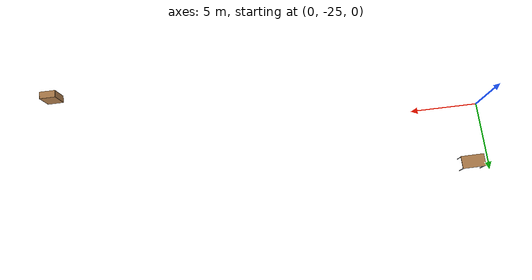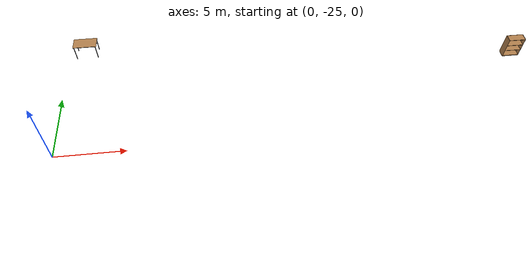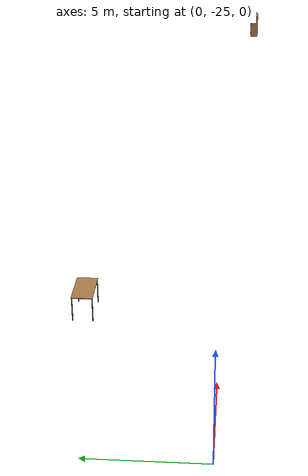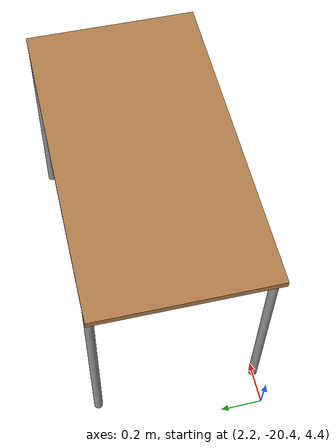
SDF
<sdf version="1.4">
 <world name="default">
  <scene>
   <sky><clouds><speed>1</speed></clouds></sky>
   <ambient>0.4 0.4 0.4 1</ambient>
   <background>0.7 0.7 0.7 1</background>
   <shadows>1</shadows>
  </scene>
  <light name="sun" type="directional">
   <pose>0 0 10 0 -0 0</pose>
   <diffuse>0.8 0.8 0.8 1</diffuse>
   <specular>0.2 0.2 0.2 1</specular>
   <attenuation>
    <range>1000</range>
    <constant>0.9</constant>
    <linear>0.01</linear>
    <quadratic>0.001</quadratic>
   </attenuation>
   <direction>-0.5 0.1 -0.9</direction>
  </light>
  <physics type="ode">
   <max_step_size>0.001</max_step_size>
   <real_time_factor>1</real_time_factor>
   <real_time_update_rate>1000</real_time_update_rate>
   <gravity>0 0 -9.8</gravity>
  </physics>
  <spherical_coordinates>
   <surface_model>EARTH_WGS84</surface_model>
   <latitude_deg>0</latitude_deg>
   <longitude_deg>0</longitude_deg>
   <elevation>0</elevation>
   <heading_deg>0</heading_deg>
  </spherical_coordinates>
  <model name="bookshelf">
   <static>1</static>
   <link name="link">
    <inertial><mass>1</mass></inertial>
    <collision name="back">
     <pose>0 0.005 0.6 0 -0 0</pose>
     <geometry><box><size>0.9 0.01 1.2</size></box></geometry>
    </collision>
    <visual name="visual1">
     <pose>0 0.005 0.6 0 -0 0</pose>
     <geometry><box><size>0.9 0.01 1.2</size></box></geometry>
     <material>
      <script><uri>file://media/materials/scripts/gazebo.material</uri><name>Gazebo/Wood</name></script>
     </material>
    </visual>
    <collision name="left_side">
     <pose>0.45 -0.195 0.6 0 -0 0</pose>
     <geometry><box><size>0.02 0.4 1.2</size></box></geometry>
    </collision>
    <visual name="visual2">
     <pose>0.45 -0.195 0.6 0 -0 0</pose>
     <geometry><box><size>0.02 0.4 1.2</size></box></geometry>
     <material>
      <script><uri>file://media/materials/scripts/gazebo.material</uri><name>Gazebo/Wood</name></script>
     </material>
    </visual>
    <collision name="right_side">
     <pose>-0.45 -0.195 0.6 0 -0 0</pose>
     <geometry><box><size>0.02 0.4 1.2</size></box></geometry>
    </collision>
    <visual name="visual3">
     <pose>-0.45 -0.195 0.6 0 -0 0</pose>
     <geometry><box><size>0.02 0.4 1.2</size></box></geometry>
     <material>
      <script><uri>file://media/materials/scripts/gazebo.material</uri><name>Gazebo/Wood</name></script>
     </material>
    </visual>
    <collision name="bottom">
     <pose>0 -0.195 0.03 0 -0 0</pose>
     <geometry><box><size>0.88 0.4 0.06</size></box></geometry>
    </collision>
    <visual name="visual4">
     <pose>0 -0.195 0.03 0 -0 0</pose>
     <geometry><box><size>0.88 0.4 0.06</size></box></geometry>
     <material>
      <script><uri>file://media/materials/scripts/gazebo.material</uri><name>Gazebo/Wood</name></script>
     </material>
    </visual>
    <collision name="top">
     <pose>0 -0.195 1.19 0 -0 0</pose>
     <geometry><box><size>0.88 0.4 0.02</size></box></geometry>
    </collision>
    <visual name="visual5">
     <pose>0 -0.195 1.19 0 -0 0</pose>
     <geometry><box><size>0.88 0.4 0.02</size></box></geometry>
     <material>
      <script><uri>file://media/materials/scripts/gazebo.material</uri><name>Gazebo/Wood</name></script>
     </material>
    </visual>
    <collision name="low_shelf">
     <pose>0 -0.195 0.43 0 -0 0</pose>
     <geometry><box><size>0.88 0.4 0.02</size></box></geometry>
    </collision>
    <visual name="visual6">
     <pose>0 -0.195 0.43 0 -0 0</pose>
     <geometry><box><size>0.88 0.4 0.02</size></box></geometry>
     <material>
      <script><uri>file://media/materials/scripts/gazebo.material</uri><name>Gazebo/Wood</name></script>
     </material>
    </visual>
    <collision name="high_shelf">
     <pose>0 -0.195 0.8 0 -0 0</pose>
     <geometry><box><size>0.88 0.4 0.02</size></box></geometry>
    </collision>
    <visual name="visual7">
     <pose>0 -0.195 0.8 0 -0 0</pose>
     <geometry><box><size>0.88 0.4 0.02</size></box></geometry>
     <material>
      <script><uri>file://media/materials/scripts/gazebo.material</uri><name>Gazebo/Wood</name></script>
     </material>
    </visual>
    <velocity_decay><linear>0</linear><angular>0</angular></velocity_decay>
   </link>
   <pose>28.0624 -26.2471 8.42 0 -0 0</pose>
  </model>
  <model name="table_0">
   <static>1</static>
   <link name="link">
    <collision name="surface">
     <pose>0 0 1 0 -0 0</pose>
     <geometry><box><size>1.5 0.8 0.03</size></box></geometry>
    </collision>
    <visual name="visual1">
     <pose>0 0 1 0 -0 0</pose>
     <geometry><box><size>1.5 0.8 0.03</size></box></geometry>
     <material>
      <script><uri>file://media/materials/scripts/gazebo.material</uri><name>Gazebo/Wood</name></script>
     </material>
    </visual>
    <collision name="front_left_leg">
     <pose>0.68 0.38 0.5 0 -0 0</pose>
     <geometry><cylinder><radius>0.02</radius><length>1</length></cylinder></geometry>
    </collision>
    <visual name="front_left_leg">
     <pose>0.68 0.38 0.5 0 -0 0</pose>
     <geometry><cylinder><radius>0.02</radius><length>1</length></cylinder></geometry>
     <material>
      <script><uri>file://media/materials/scripts/gazebo.material</uri><name>Gazebo/Grey</name></script>
     </material>
    </visual>
    <collision name="front_right_leg">
     <pose>0.68 -0.38 0.5 0 -0 0</pose>
     <geometry><cylinder><radius>0.02</radius><length>1</length></cylinder></geometry>
    </collision>
    <visual name="front_right_leg">
     <pose>0.68 -0.38 0.5 0 -0 0</pose>
     <geometry><cylinder><radius>0.02</radius><length>1</length></cylinder></geometry>
     <material>
      <script><uri>file://media/materials/scripts/gazebo.material</uri><name>Gazebo/Grey</name></script>
     </material>
    </visual>
    <collision name="back_right_leg">
     <pose>-0.68 -0.38 0.5 0 -0 0</pose>
     <geometry><cylinder><radius>0.02</radius><length>1</length></cylinder></geometry>
    </collision>
    <visual name="back_right_leg">
     <pose>-0.68 -0.38 0.5 0 -0 0</pose>
     <geometry><cylinder><radius>0.02</radius><length>1</length></cylinder></geometry>
     <material>
      <script><uri>file://media/materials/scripts/gazebo.material</uri><name>Gazebo/Grey</name></script>
     </material>
    </visual>
    <collision name="back_left_leg">
     <pose>-0.68 0.38 0.5 0 -0 0</pose>
     <geometry><cylinder><radius>0.02</radius><length>1</length></cylinder></geometry>
    </collision>
    <visual name="back_left_leg">
     <pose>-0.68 0.38 0.5 0 -0 0</pose>
     <geometry><cylinder><radius>0.02</radius><length>1</length></cylinder></geometry>
     <material>
      <script><uri>file://media/materials/scripts/gazebo.material</uri><name>Gazebo/Grey</name></script>
     </material>
    </visual>
    <velocity_decay><linear>0</linear><angular>0</angular></velocity_decay>
   </link>
   <pose>3 -20 4.5 0 -0 0</pose>
  </model>
 </world>
</sdf>
